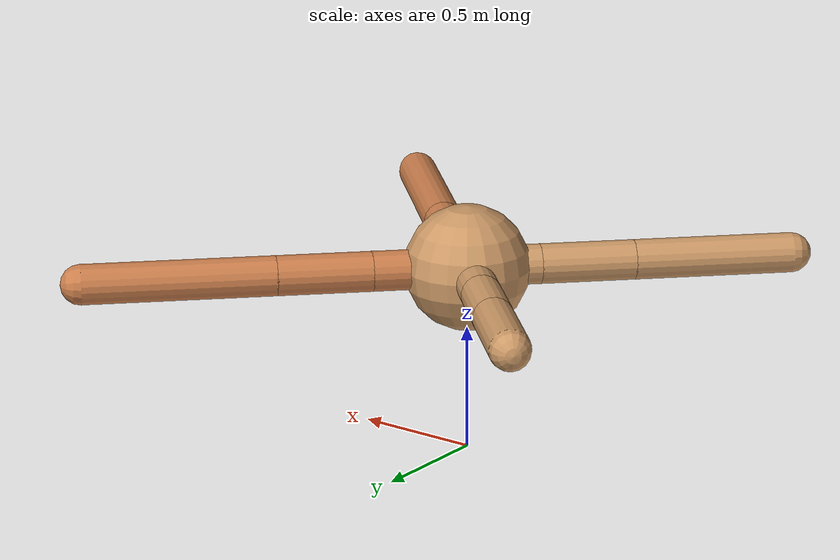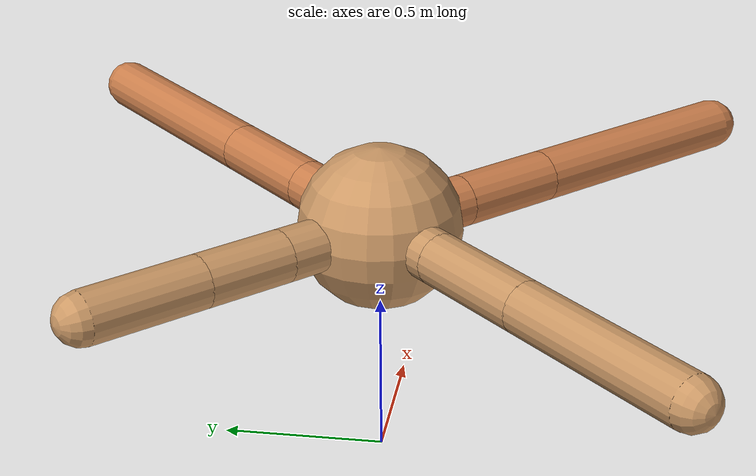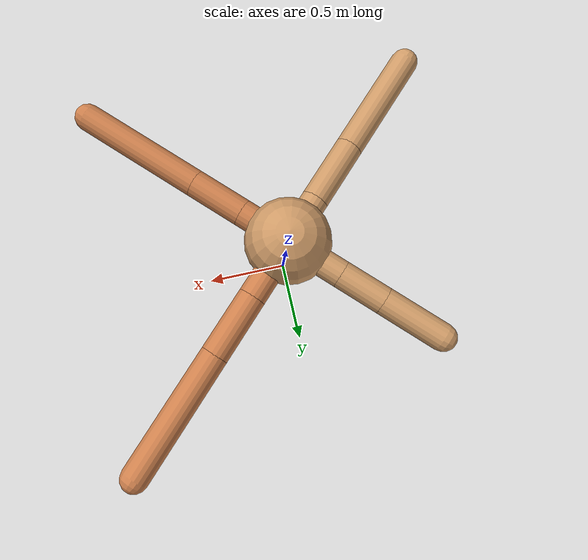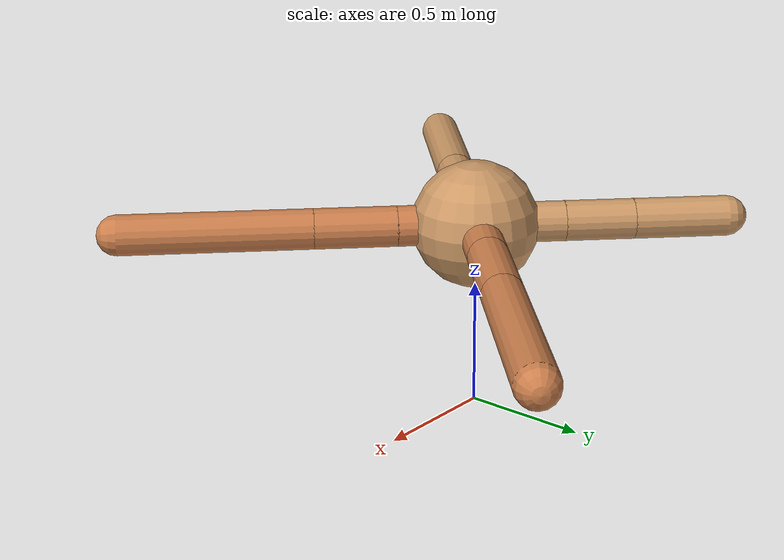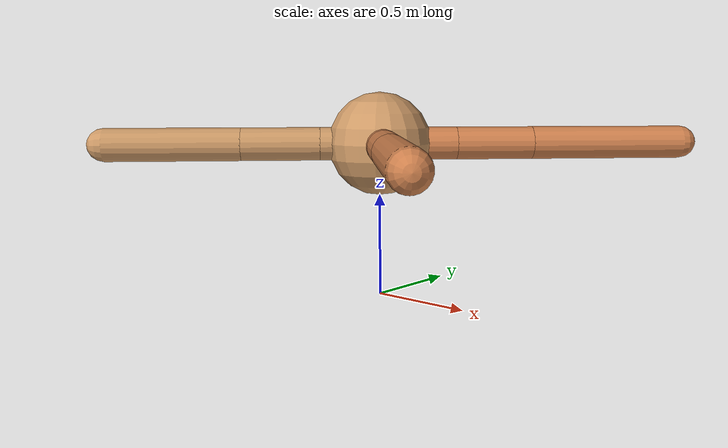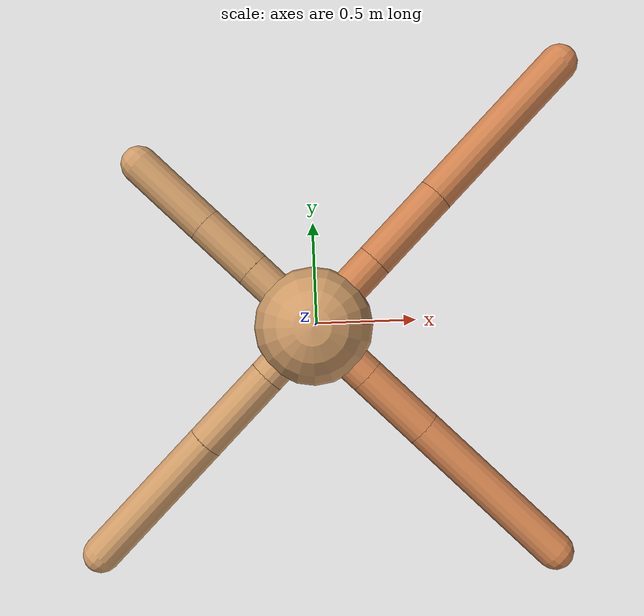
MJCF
<mujoco model="ant">
  <compiler angle="degree" coordinate="local" inertiafromgeom="true" />
  <option integrator="RK4" timestep="0.01" />
  <custom>
    <numeric data="0.0 0.0 0.55 1.0 0.0 0.0 0.0 0.0 1.0 0.0 -1.0 0.0 -1.0 0.0 1.0" name="init_qpos" />
  </custom>
  <default>
    <joint armature="1" damping="1" limited="true" />
    <geom conaffinity="0" condim="3" density="5.0" friction="1.5 0.1 0.1" margin="0.01" rgba="0.8 0.6 0.4 1" />
  </default>
  <worldbody>
    <body name="torso" pos="0 0 0.75">
      <geom name="torso_geom" pos="0 0 0" size="0.25" type="sphere" />

      <body name="front_left_leg" pos="0 0 0">
        <geom fromto="0.0 0.0 0.0 0.265541133415006 0.265541133415006 0.0" name="aux_1_geom" size="0.08" type="capsule" rgba=".8 .5 .3 1" />
        <body name="aux_1" pos="0.265541133415006 0.265541133415006 0.0">
          <joint axis="0 0 1" name="hip_1" pos="0.0 0.0 0.0" range="-40 40" type="hinge" />
          <geom fromto="0.0 0.0 0.0 0.2659645977581219 0.2659645977581219 0.0" name="left_leg_geom" size="0.08" type="capsule" rgba=".8 .5 .3 1" />
          <body pos="0.2659645977581219 0.2659645977581219 0.0" name="front_left_foot">
            <joint axis="-1 1 0" name="ankle_1" pos="0.0 0.0 0.0" range="30 100" type="hinge" />
            <geom fromto="0.0 0.0 0.0 0.5355500894033696 0.5355500894033696 0.0" name="left_ankle_geom" size="0.08" type="capsule" rgba=".8 .5 .3 1" />
          </body>
        </body>
      </body>
      <body name="front_right_leg" pos="0 0 0">
        <geom fromto="0.0 0.0 0.0 -0.24696399751490106 0.24696399751490106 0.0" name="aux_2_geom" size="0.08" type="capsule" />
        <body name="aux_2" pos="-0.24696399751490106 0.24696399751490106 0.0">
          <joint axis="0 0 1" name="hip_2" pos="0.0 0.0 0.0" range="-40 40" type="hinge" />
          <geom fromto="0.0 0.0 0.0 -0.1939835696053608 0.1939835696053608 0.0" name="right_leg_geom" size="0.08" type="capsule" />
          <body pos="-0.1939835696053608 0.1939835696053608 0.0" name="front_right_foot">
            <joint axis="1 1 0" name="ankle_2" pos="0.0 0.0 0.0" range="-100 -30" type="hinge" />
            <geom fromto="0.0 0.0 0.0 -0.2636002413167608 0.2636002413167608 0.0" name="right_ankle_geom" size="0.08" type="capsule" />
          </body>
        </body>
      </body>
      <body name="left_back_leg" pos="0 0 0">
        <geom fromto="0.0 0.0 0.0 -0.2046795447849486 -0.2046795447849486 0.0" name="aux_3_geom" size="0.08" type="capsule" />
        <body name="aux_3" pos="-0.2046795447849486 -0.2046795447849486 0.0">
          <joint axis="0 0 1" name="hip_3" pos="0.0 0.0 0.0" range="-40 40" type="hinge" />
          <geom fromto="0.0 0.0 0.0 -0.26598818857471446 -0.26598818857471446 0.0" name="back_leg_geom" size="0.08" type="capsule" />
          <body pos="-0.26598818857471446 -0.26598818857471446 0.0" name="left_back_foot">
            <joint axis="-1 1 0" name="ankle_3" pos="0.0 0.0 0.0" range="-100 -30" type="hinge" />
            <geom fromto="0.0 0.0 0.0 -0.4507635254372049 -0.4507635254372049 0.0" name="third_ankle_geom" size="0.08" type="capsule" />
          </body>
        </body>
      </body>
      <body name="right_back_leg" pos="0 0 0">
        <geom fromto="0.0 0.0 0.0 0.21722300578747578 -0.21722300578747578 0.0" name="aux_4_geom" size="0.08" type="capsule" rgba=".8 .5 .3 1" />
        <body name="aux_4" pos="0.21722300578747578 -0.21722300578747578 0.0">
          <joint axis="0 0 1" name="hip_4" pos="0.0 0.0 0.0" range="-40 40" type="hinge" />
          <geom fromto="0.0 0.0 0.0 0.22847367281884448 -0.22847367281884448 0.0" name="rightback_leg_geom" size="0.08" type="capsule" rgba=".8 .5 .3 1" />
          <body pos="0.22847367281884448 -0.22847367281884448 0.0" name="right_back_foot">
            <joint axis="1 1 0" name="ankle_4" pos="0.0 0.0 0.0" range="30 100" type="hinge" />
            <geom fromto="0.0 0.0 0.0 0.5318447572868541 -0.5318447572868541 0.0" name="fourth_ankle_geom" size="0.08" type="capsule" rgba=".8 .5 .3 1" />
          </body>
        </body>
      </body>
    </body>
  </worldbody>
  <actuator>
    <motor ctrllimited="true" ctrlrange="-1.0 1.0" joint="hip_4" gear="150" />
    <motor ctrllimited="true" ctrlrange="-1.0 1.0" joint="ankle_4" gear="150" />
    <motor ctrllimited="true" ctrlrange="-1.0 1.0" joint="hip_1" gear="150" />
    <motor ctrllimited="true" ctrlrange="-1.0 1.0" joint="ankle_1" gear="150" />
    <motor ctrllimited="true" ctrlrange="-1.0 1.0" joint="hip_2" gear="150" />
    <motor ctrllimited="true" ctrlrange="-1.0 1.0" joint="ankle_2" gear="150" />
    <motor ctrllimited="true" ctrlrange="-1.0 1.0" joint="hip_3" gear="150" />
    <motor ctrllimited="true" ctrlrange="-1.0 1.0" joint="ankle_3" gear="150" />
  </actuator>
</mujoco>
